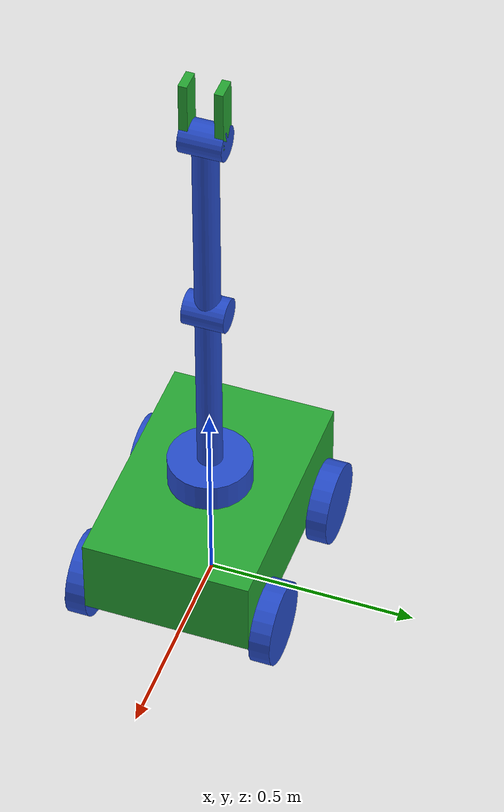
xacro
<?xml version="1.0"?>
<robot xmlns:xacro="http://www.ros.org/wiki/xacro">

    <xacro:property name="base_length" value="0.6" />
    <xacro:property name="base_width" value="0.4" />
    <xacro:property name="base_height" value="0.2" />

    <xacro:property name="cyl_radius" value="0.1" />
    <xacro:property name="cyl_len" value="0.05" />

    <xacro:property name="sph_radius" value="0.05" />

    <xacro:property name="arm_base_radius" value="0.1" />
    <xacro:property name="arm_base_length" value="0.07" />
    <xacro:property name="arm_length" value="0.5" />
    <xacro:property name="third_arm_length" value="0.025" />
    <xacro:property name="arm_radius" value="0.03" />

    <xacro:property name="arm_link_cyl_len" value="0.1" />
    <xacro:property name="arm_link_cyl_radius" value="0.04" />

    <xacro:property name="gripper_base_length" value="0.15" />
    <xacro:property name="gripper_base_width" value="0.05" />
    <xacro:property name="gripper_base_height" value="0.02" />

    <link name="base_footprint" />

    <link name="base_link">
        <visual>
            <geometry>
                <box size="${base_length} ${base_width} ${base_height}" />
            </geometry>
            <origin xyz="0 0 0" rpy="0 0 0" />
            <material name="green" />
        </visual>

        <collision>
            <geometry>
                <box size="${base_length} ${base_width} ${base_height}" />
            </geometry>
            <origin xyz="0 0 0" rpy="0 0 0" />
        </collision>

        <xacro:box_inertia m="5.0" l="${2*base_length}" w="${2*base_width}" h="${2*base_height}" xyz="0 0 0" rpy="0 0 0" />
    </link>

    <link name="arm_base_link">
        <visual>
            <geometry>
                <cylinder radius="${arm_base_radius}" length="${arm_base_length}" />
            </geometry>
            <origin xyz="0 0 0" rpy="0 0 0" />
            <material name="blue" />
        </visual>

        <collision>
            <geometry>
                <cylinder radius="${arm_base_radius}" length="${arm_base_length}" />
            </geometry>
            <origin xyz="0 0 0" rpy="0 0 0" />
        </collision>

        <xacro:wheel_inertia m="0.5" r="${2*arm_base_radius}" h="${2*arm_base_length}" xyz="0 0 0" rpy="0 0 0" />
    </link>

    <xacro:macro name="wheel_link" params="prefix">
        <link name="${prefix}_wheel_link">
        <visual>
            <geometry>
                <cylinder radius="${cyl_radius}" length="${cyl_len}" />
            </geometry>
            <origin xyz="0 0 0" rpy="0 0 0" />
            <material name="blue" />
        </visual>

        <collision>
            <geometry>
                <cylinder radius="${cyl_radius}" length="${cyl_len}" />
            </geometry>
            <origin xyz="0 0 0" rpy="0 0 0" />
        </collision>

        <xacro:wheel_inertia m="1.0" r="${2*cyl_radius}" h="${2*cyl_len}" xyz="0 0 0" rpy="0 0 0" />
    </link>
    </xacro:macro>

    <xacro:macro name="arm_link" params="postfix l">
        <link name="arm_link_${postfix}">
        <visual>
            <geometry>
                <cylinder radius="${arm_radius}" length="${l}" />
            </geometry>
            <origin xyz="0 0 ${(l/2)}" rpy="0 0 0" />
            <material name="blue" />
        </visual>

        <collision>
            <geometry>
                <cylinder radius="${arm_radius}" length="${l}" />
            </geometry>
            <origin xyz="0 0 0" rpy="0 0 0" />
        </collision>

        <xacro:wheel_inertia m="0.3" r="${2*arm_radius}" h="${2*l}" xyz="0 0 0" rpy="0 0 0" />
    </link>
    </xacro:macro>

    <xacro:macro name="arm_joint_link" params="postfix">
        <link name="arm_joint_link_${postfix}">
        <visual>
            <geometry>
                <cylinder radius="${arm_link_cyl_radius}" length="${arm_link_cyl_len}" />
            </geometry>
            <origin xyz="0 0 0" rpy="0 0 0" />
            <material name="blue" />
        </visual>

        <collision>
            <geometry>
                <cylinder radius="${arm_link_cyl_radius}" length="${arm_link_cyl_len}" />
            </geometry>
            <origin xyz="0 0 0" rpy="0 0 0" />
        </collision>

        <xacro:wheel_inertia m="0.3" r="${2*arm_link_cyl_radius}" h="${2*arm_link_cyl_len}" xyz="0 0 0" rpy="0 0 0" />
    </link>
    </xacro:macro>

    <xacro:arm_joint_link postfix="first" />
    <xacro:arm_joint_link postfix="second" />

    <xacro:arm_link postfix="first" l="${arm_length}" />
    <xacro:arm_link postfix="second" l="${arm_length}" />

    <xacro:wheel_link prefix="right" />
    <xacro:wheel_link prefix="left" />
    <xacro:wheel_link prefix="front_left" />
    <xacro:wheel_link prefix="front_right" />

    <xacro:macro name="gripper" params="prefix">
        <link name="${prefix}_gripper">
        <visual>
            <geometry>
                <box size="${gripper_base_length} ${gripper_base_width} ${gripper_base_height}" />
            </geometry>
            <origin xyz="${-(gripper_base_length/2)} 0 0" rpy="0 0 0" />
            <material name="green" />
        </visual>

        <collision>
            <geometry>
                <box size="${gripper_base_length} ${gripper_base_width} ${gripper_base_height}" />
            </geometry>
            <origin xyz="${-(gripper_base_length/2)} 0 0" rpy="0 0 0" />
        </collision>

        <xacro:box_inertia m="0.2" l="${2*gripper_base_length}" w="${2*gripper_base_width}" h="${2*gripper_base_height}" xyz="0 0 0" rpy="0 0 0" />
    </link>
    </xacro:macro>

    <xacro:gripper prefix="right" />
    <xacro:gripper prefix="left" />

    <joint name="base_joint" type="fixed">
        <parent link="base_footprint" />
        <child link="base_link" />
        <origin xyz="0 0 ${base_height}" rpy="0 0 0" />
    </joint>

    <joint name="base_right_wheel_joint" type="continuous">
        <parent link="base_link" />
        <child link="right_wheel_link" />
        <origin xyz="${-((base_length/2) - cyl_radius)} ${-((base_width/2) + (cyl_len/2))} ${-(base_height/2)}" rpy="${pi / 2.0} 0 0" />
        <axis xyz="0 0 1" />
    </joint>

    <joint name="base_left_wheel_joint" type="continuous">
        <parent link="base_link" />
        <child link="left_wheel_link" />
        <origin xyz="${-((base_length/2) - cyl_radius)} ${(base_width/2) + (cyl_len/2)} ${-(base_height/2)}" rpy="${pi / 2.0} 0 0" />
        <axis xyz="0 0 1" />
    </joint>

    <joint name="base_front_left_wheel_joint" type="continuous">
        <parent link="base_link" />
        <child link="front_left_wheel_link" />
        <origin xyz="${((base_length/2) - cyl_radius)} ${(base_width/2) + (cyl_len/2)} ${-(base_height/2)}" rpy="${pi / 2.0} 0 0" />
        <axis xyz="0 0 1" />
    </joint>

    <joint name="base_front_right_wheel_joint" type="continuous">
        <parent link="base_link" />
        <child link="front_right_wheel_link" />
        <origin xyz="${((base_length/2) - cyl_radius)} ${-((base_width/2) + (cyl_len/2))} ${-(base_height/2)}" rpy="${pi / 2.0} 0 0" />
        <axis xyz="0 0 1" />
    </joint>

    <joint name="base_arm_base_joint" type="continuous">
        <parent link="base_link" />
        <child link="arm_base_link" />
        <origin xyz="0 0 ${(base_height/2) + (arm_base_length/2)}" rpy="0 0 0" />
        <axis xyz="0 0 1" />
    </joint>

    <joint name="base_arm_first_joint" type="revolute">
        <parent link="arm_base_link" />
        <child link="arm_link_first" />
        <origin xyz="0 0 0" rpy="0 0 0" />
        <axis xyz="0 1 0" />
        <limit lower="${-(pi/2)}" upper="${pi/2}" effort="100" velocity="100" />
    </joint>

    <joint name="arm_link_first_rev_joint" type="fixed">
        <parent link="arm_link_first" />
        <child link="arm_joint_link_first" />
        <origin xyz="0 0 ${arm_length}" rpy="${pi / 2.0} 0 0" />
    </joint>

    <joint name="second_arm_link_joint" type="continuous">
        <parent link="arm_joint_link_first" />
        <child link="arm_link_second" />
        <origin xyz="0 0 0" rpy="${-(pi / 2.0)} 0 0" />
        <axis xyz="0 1 0" />
    </joint>

    <joint name="arm_link_second_rev_joint" type="continuous">
        <parent link="arm_link_second" />
        <child link="arm_joint_link_second" />
        <origin xyz="0 0 ${arm_length}" rpy="${pi / 2.0} 0 0" />
        <axis xyz="0 0 1" />
    </joint>

    <joint name="gripper_right_joint" type="continuous">
        <parent link="arm_joint_link_second" />
        <child link="right_gripper" />
        <origin xyz="0 0 ${((arm_link_cyl_len/2)-(gripper_base_height/2))}" rpy="0 0 ${-(pi / 2.0)}" />
        <axis xyz="0 1 0" />
    </joint>

    <joint name="gripper_left_joint" type="continuous">
        <parent link="arm_joint_link_second" />
        <child link="left_gripper" />
        <origin xyz="0 0 ${-((arm_link_cyl_len/2)-(gripper_base_height/2))}" rpy="0 0 ${-(pi / 2.0)}" />
        <axis xyz="0 1 0" />
    </joint>

</robot>
